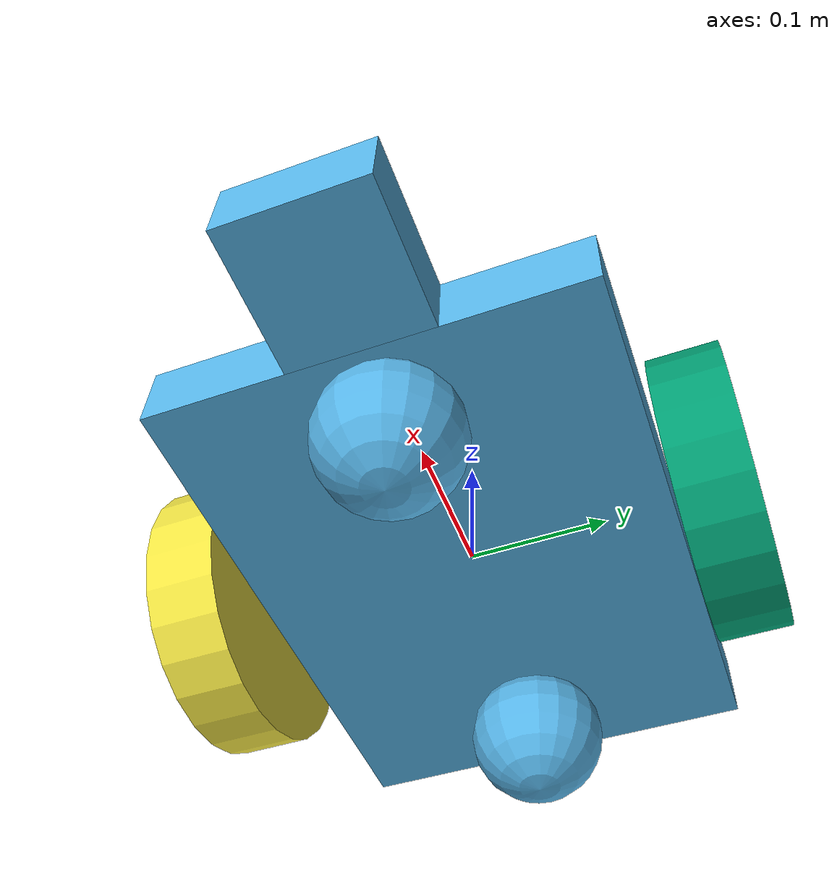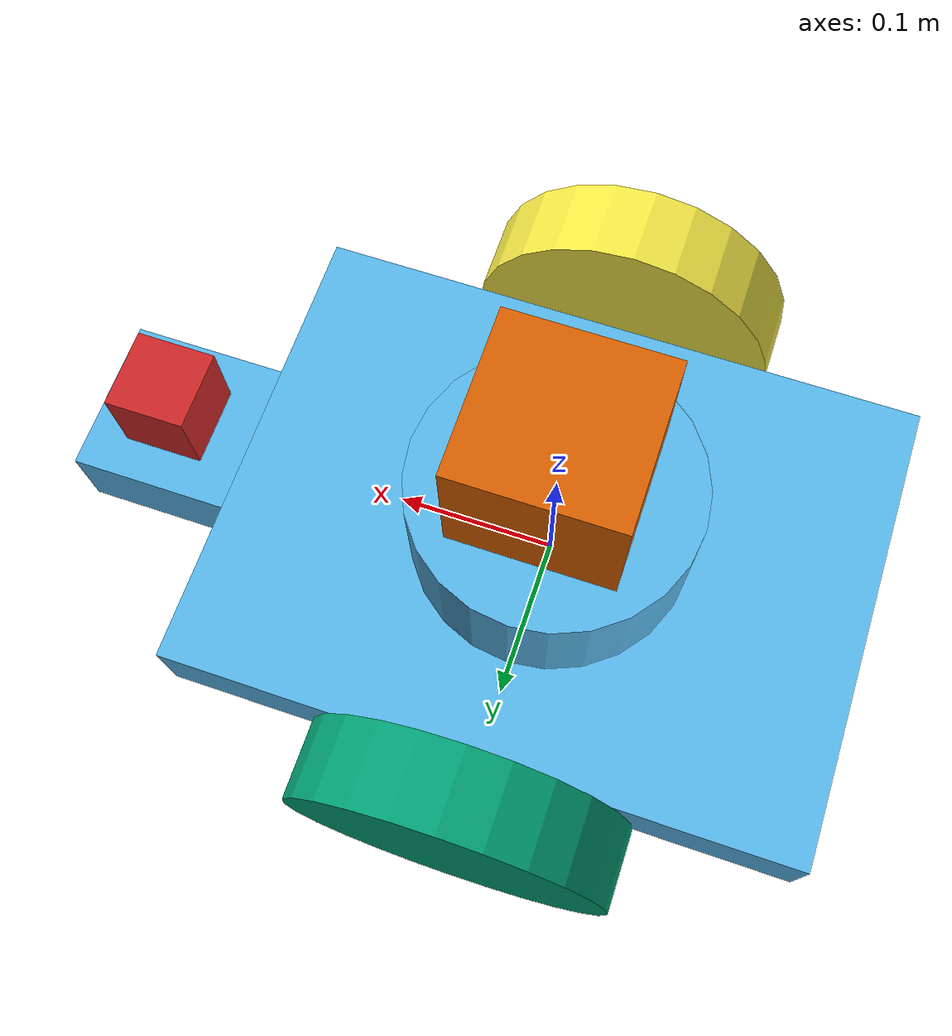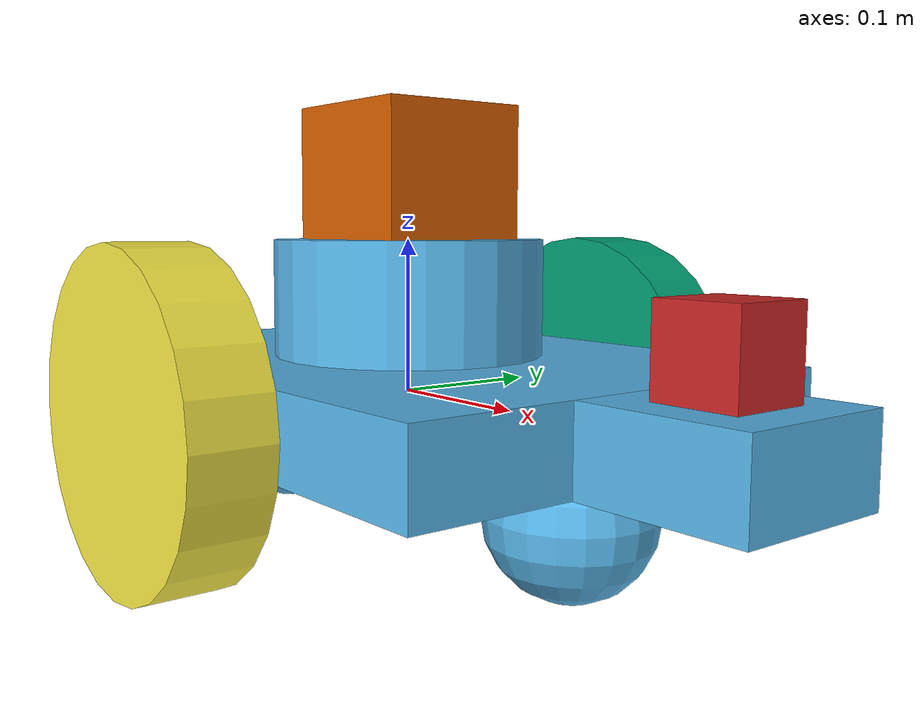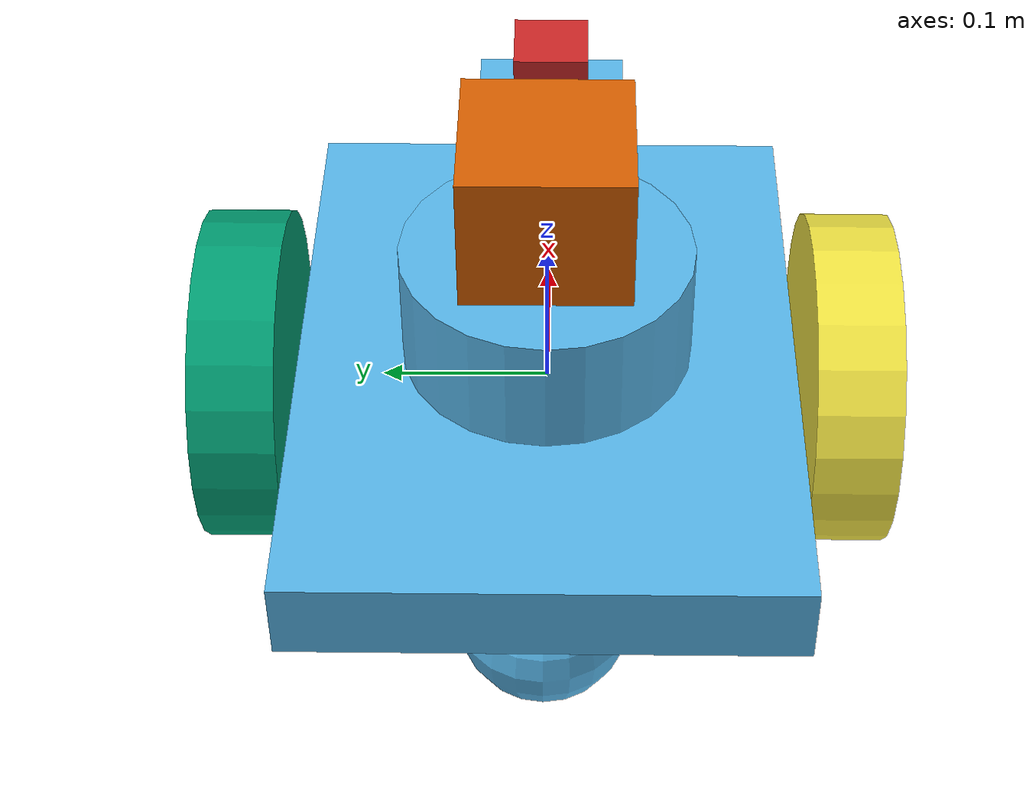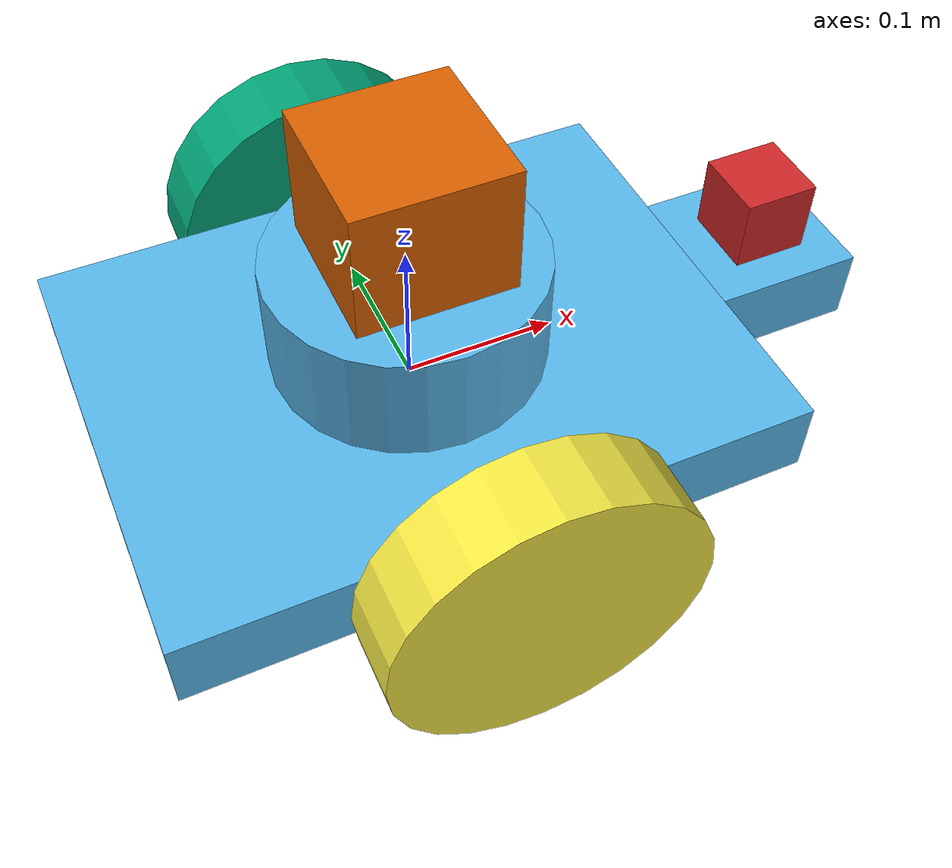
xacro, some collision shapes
<?xml version='1.0'?>

<robot name="new_bot" xmlns:xacro="http://www.ros.org/wiki/xacro">

  <xacro:include filename="$(find new_bot)/urdf/new_bot.gazebo" />
  <link name="robot_footprint"></link>

  <joint name="robot_footprint_joint" type="fixed">
    <origin xyz="0 0 0" rpy="0 0 0" />
    <parent link="robot_footprint"/>
    <child link="chassis" />
  </joint>

  <link name='chassis'>
    <pose>0 0 0.1 0 0 0</pose>

    <inertial>
      <mass value="15.0"/>
      <origin xyz="0.0 0 0" rpy=" 0 0 0"/>
      <inertia
          ixx="0.1" ixy="0" ixz="0"
          iyy="0.1" iyz="0"
          izz="0.1"
      />
    </inertial>

    <collision name='collision'>
      <origin xyz="0 0 0" rpy=" 0 0 0"/>
      <geometry>
        <box size=".4 .3 .05"/>
      </geometry>
    </collision>

    <visual name='chassis_visual'>
      <origin xyz="0 0 0" rpy=" 0 0 0"/>
      <geometry>
        <box size=".4 .3 .05"/>
      </geometry>
    </visual>

    <collision name='laser_mount_collision'>
      <origin xyz="0 0 0.0625" rpy="0 0 0"/>
      <geometry>
        <cylinder length="0.075" radius="0.0875"/>
      </geometry>
    </collision>

    <visual name='laser_mount_visual'>
      <origin xyz="0 0 0.0625" rpy="0 0 0"/>
      <geometry>
        <cylinder length="0.075" radius="0.0875"/>
      </geometry>
    </visual>

    <collision name='camera_mount_collision'>
      <origin xyz="0.25 0 0" rpy="0 0 0"/>
      <geometry>
        <box size="0.1 0.1 0.05"/>
      </geometry>
    </collision>

    <visual name='camera_mount_visual'>
      <origin xyz="0.25 0 0" rpy="0 0 0"/>
      <geometry>
        <box size="0.1 0.1 0.05"/>
      </geometry>
    </visual>

    <collision name='back_caster_collision'>
      <origin xyz="-0.15 0 -0.05" rpy=" 0 0 0"/>
      <geometry>
        <sphere radius="0.05"/>
      </geometry>
      <surface>
        <friction>
          <ode>
            <mu>0</mu>
            <mu2>0</mu2>
            <slip1>1.0</slip1>
            <slip2>1.0</slip2>
          </ode>
        </friction>
      </surface>
    </collision>

    <visual name='back_caster_visual'>
      <origin xyz="-0.15 0 -0.05" rpy=" 0 0 0"/>
      <geometry>
        <sphere radius="0.05"/>
      </geometry>
    </visual>

    <collision name='front_caster_collision'>
      <origin xyz="0.15 0 -0.05" rpy=" 0 0 0"/>
      <geometry>
        <sphere radius="0.05"/>
      </geometry>
      <surface>
        <friction>
          <ode>
            <mu>0</mu>
            <mu2>0</mu2>
            <slip1>1.0</slip1>
            <slip2>1.0</slip2>
          </ode>
        </friction>
      </surface>
    </collision>

    <visual name='front_caster_visual'>
      <origin xyz="0.15 0 -0.05" rpy=" 0 0 0"/>
      <geometry>
        <sphere radius="0.05"/>
      </geometry>
    </visual>

  </link>

  <link name='left_wheel'>

    <inertial>
      <mass value="5.0"/>
      <origin xyz="0.0 0 0" rpy=" 0 1.5707 1.5707"/>
      <inertia
          ixx="0.1" ixy="0" ixz="0"
          iyy="0.1" iyz="0"
          izz="0.1"
      />
    </inertial>

    <collision name='left_wheel_collision'>
      <origin xyz="0 0 0" rpy=" 0 1.5707 1.5707"/>
      <geometry>
        <cylinder length="0.05" radius="0.1"/>
      </geometry>
    </collision>

    <visual name='left_wheel_visual'>
      <origin xyz="0 0 0" rpy=" 0 1.5707 1.5707"/>
      <geometry>
        <cylinder length="0.05" radius="0.1"/>
      </geometry>
    </visual>

  </link>

  <link name='right_wheel'>

    <inertial>
      <mass value="5.0"/>
      <origin xyz="0.0 0 0" rpy=" 0 1.5707 1.5707"/>
      <inertia
          ixx="0.1" ixy="0" ixz="0"
          iyy="0.1" iyz="0"
          izz="0.1"
      />
    </inertial>

    <collision name='right_wheel_collision'>
      <origin xyz="0 0 0" rpy=" 0 1.5707 1.5707"/>
      <geometry>
        <cylinder length="0.05" radius="0.1"/>
      </geometry>
    </collision>

    <visual name='right_wheel_visual'>
      <origin xyz="0 0 0" rpy=" 0 1.5707 1.5707"/>
      <geometry>
        <cylinder length="0.05" radius="0.1"/>
      </geometry>
    </visual>

  </link>

  <link name='camera'>

    <inertial>
      <mass value="0.1"/>
      <origin xyz="0 0 0" rpy=" 0 0 0"/>
      <inertia
          ixx="1e-6" ixy="0" ixz="0"
          iyy="1e-6" iyz="0"
          izz="1e-6"
      />
    </inertial>

    <collision name='camera_collision'>
      <origin xyz="0 0 0" rpy=" 0 0 0"/>
      <geometry>
        <box size="0.05 0.05 0.05"/>
      </geometry>
    </collision>

    <visual name='camera_visual'>
      <origin xyz="0 0 0" rpy=" 0 0 0"/>
      <geometry>
        <box size="0.05 0.05 0.05"/>
      </geometry>
    </visual>
  </link>

  <link name='hokuyo'>

    <inertial>
      <mass value="0.1"/>
      <origin xyz="0 0 0" rpy=" 0 0 0"/>
      <inertia
          ixx="1e-6" ixy="0" ixz="0"
          iyy="1e-6" iyz="0"
          izz="1e-6"
      />
    </inertial>

    <collision name='hokuyo_collision'>
      <origin xyz="0 0 0" rpy=" 0 0 0"/>
      <geometry>
        <box size="0.1 0.1 0.1"/>
      </geometry>
    </collision>

    <visual name='hokuyo_visual'>
      <origin xyz="0 0 0" rpy=" 0 0 0"/>
      <geometry>
        <mesh filename="package://new_bot/meshes/hokuyo.dae"/>
      </geometry>
    </visual>
  </link>

  <joint type="continuous" name="left_wheel_hinge">
    <origin xyz="0 0.18 0" rpy="0 0 0"/>
    <child link="left_wheel"/>
    <parent link="chassis"/>
    <axis xyz="0 1 0" rpy="0 0 0"/>
    <limit effort="10000" velocity="1000"/>
    <joint_properties damping="1.0" friction="1.0"/>
  </joint>

  <joint type="continuous" name="right_wheel_hinge">
    <origin xyz="0 -0.18 0" rpy="0 0 0"/>
    <child link="right_wheel"/>zz
    <parent link="chassis"/>
    <axis xyz="0 1 0" rpy="0 0 0"/>
    <limit effort="10000" velocity="1000"/>
    <joint_properties damping="1.0" friction="1.0"/>
  </joint>

  <joint type="fixed" name="camera_joint">
    <origin xyz="0.25 0 0.05" rpy="0 0 0"/>
    <child link="camera"/>
    <parent link="chassis"/>
    <limit effort="10000" velocity="1000"/>
    <joint_properties damping="1.0" friction="1.0"/>
  </joint>

  <joint type="fixed" name="hokuyo_joint">
    <origin xyz="0 0 0.135" rpy="0 0 0"/>
    <child link="hokuyo"/>
    <parent link="chassis"/>
    <limit effort="10000" velocity="1000"/>
    <joint_properties damping="1.0" friction="1.0"/>
  </joint>

</robot>
